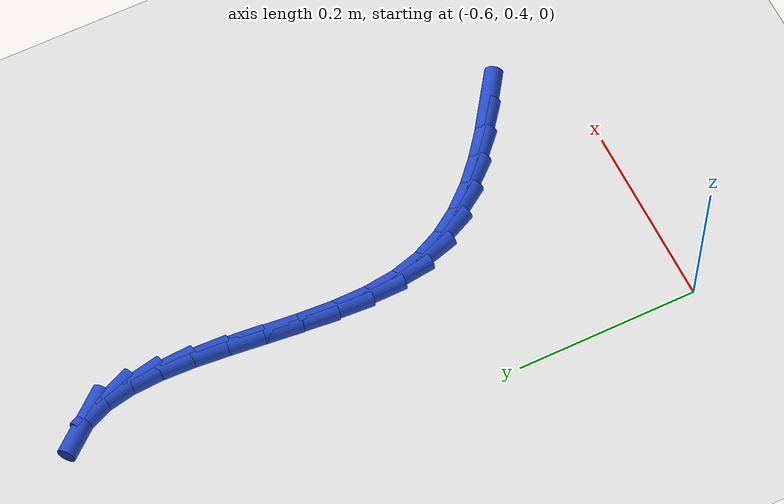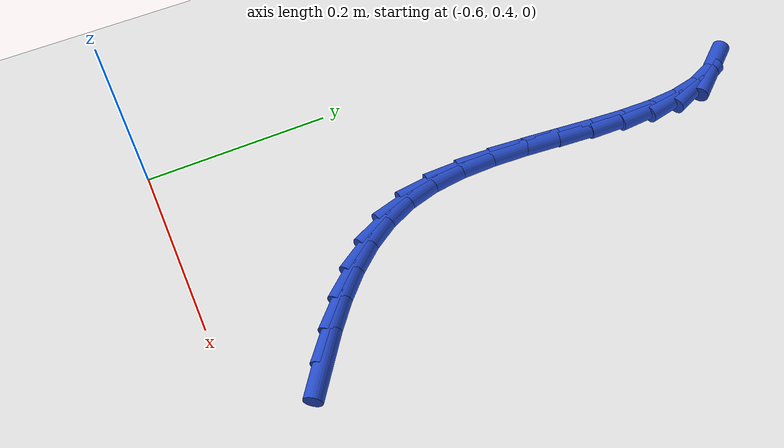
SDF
<sdf version="1.6">
 <world name="default">
  <model name="ground_plane">
   <static>1</static>
   <link name="link">
    <collision name="collision">
     <geometry><plane><normal>0 0 1</normal><size>100 100</size></plane></geometry>
     <surface><friction><ode><mu>100</mu><mu2>50</mu2></ode></friction></surface>
    </collision>
    <visual name="visual">
     <cast_shadows>0</cast_shadows>
     <geometry><plane><normal>0 0 1</normal><size>100 100</size></plane></geometry>
     <material>
      <script><uri>file://media/materials/scripts/gazebo.material</uri><name>Gazebo/WhiteGlow</name></script>
     </material>
    </visual>
   </link>
  </model>
  <model name="line">
   <link name="link_18">
    <pose>-0.3131551735052034 0.48954671347567114 0.01 0 1.57 -0.6079359270252546</pose>
    <collision name="collision">
     <geometry><cylinder><radius>0.01</radius><length>0.08</length></cylinder></geometry>
    </collision>
    <visual name="visual">
     <material>
      <script><name>Gazebo/Blue</name><uri>file://media/materials/scripts/gazebo.material</uri></script>
     </material>
     <geometry><cylinder><radius>0.01</radius><length>0.08</length></cylinder></geometry>
    </visual>
   </link>
   <link name="link_19">
    <pose>-0.34273277641818695 0.5101283161706972 0.01 0 1.57 -0.6662746001012232</pose>
    <collision name="collision">
     <geometry><cylinder><radius>0.01</radius><length>0.08</length></cylinder></geometry>
    </collision>
    <visual name="visual">
     <material>
      <script><name>Gazebo/Blue</name><uri>file://media/materials/scripts/gazebo.material</uri></script>
     </material>
     <geometry><cylinder><radius>0.01</radius><length>0.08</length></cylinder></geometry>
    </visual>
   </link>
   <link name="link_20">
    <pose>-0.37032562842982986 0.5318220449384388 0.01 0 1.57 -0.7460411265431658</pose>
    <collision name="collision">
     <geometry><cylinder><radius>0.01</radius><length>0.08</length></cylinder></geometry>
    </collision>
    <visual name="visual">
     <material>
      <script><name>Gazebo/Blue</name><uri>file://media/materials/scripts/gazebo.material</uri></script>
     </material>
     <geometry><cylinder><radius>0.01</radius><length>0.08</length></cylinder></geometry>
    </visual>
   </link>
   <link name="link_21">
    <pose>-0.39535562774692473 0.5549554942929857 0.01 0 1.57 -0.8496764899215774</pose>
    <collision name="collision">
     <geometry><cylinder><radius>0.01</radius><length>0.08</length></cylinder></geometry>
    </collision>
    <visual name="visual">
     <material>
      <script><name>Gazebo/Blue</name><uri>file://media/materials/scripts/gazebo.material</uri></script>
     </material>
     <geometry><cylinder><radius>0.01</radius><length>0.08</length></cylinder></geometry>
    </visual>
   </link>
   <link name="link_22">
    <pose>-0.41724467257626396 0.5798562587484275 0.01 0 1.57 -0.978373477867756</pose>
    <collision name="collision">
     <geometry><cylinder><radius>0.01</radius><length>0.08</length></cylinder></geometry>
    </collision>
    <visual name="visual">
     <material>
      <script><name>Gazebo/Blue</name><uri>file://media/materials/scripts/gazebo.material</uri></script>
     </material>
     <geometry><cylinder><radius>0.01</radius><length>0.08</length></cylinder></geometry>
    </visual>
   </link>
   <link name="link_23">
    <pose>-0.4354146611246403 0.6068519328188539 0.01 0 1.57 -1.1301474944746117</pose>
    <collision name="collision">
     <geometry><cylinder><radius>0.01</radius><length>0.08</length></cylinder></geometry>
    </collision>
    <visual name="visual">
     <material>
      <script><name>Gazebo/Blue</name><uri>file://media/materials/scripts/gazebo.material</uri></script>
     </material>
     <geometry><cylinder><radius>0.01</radius><length>0.08</length></cylinder></geometry>
    </visual>
   </link>
   <link name="link_24">
    <pose>-0.44928749159884596 0.636270111018354 0.01 0 1.57 -1.2978316115861905</pose>
    <collision name="collision">
     <geometry><cylinder><radius>0.01</radius><length>0.08</length></cylinder></geometry>
    </collision>
    <visual name="visual">
     <material>
      <script><name>Gazebo/Blue</name><uri>file://media/materials/scripts/gazebo.material</uri></script>
     </material>
     <geometry><cylinder><radius>0.01</radius><length>0.08</length></cylinder></geometry>
    </visual>
   </link>
   <link name="link_25">
    <pose>-0.45829190780061263 0.6684341893582361 0.01 0 1.57 -1.452235611223432</pose>
    <collision name="collision">
     <geometry><cylinder><radius>0.01</radius><length>0.08</length></cylinder></geometry>
    </collision>
    <visual name="visual">
     <material>
      <script><name>Gazebo/Blue</name><uri>file://media/materials/scripts/gazebo.material</uri></script>
     </material>
     <geometry><cylinder><radius>0.01</radius><length>0.08</length></cylinder></geometry>
    </visual>
   </link>
   <link name="link_26">
    <pose>-0.46244584084719786 0.7033062067135757 0.01 0 1.57 -1.5611669726235993</pose>
    <collision name="collision">
     <geometry><cylinder><radius>0.01</radius><length>0.08</length></cylinder></geometry>
    </collision>
    <visual name="visual">
     <material>
      <script><name>Gazebo/Blue</name><uri>file://media/materials/scripts/gazebo.material</uri></script>
     </material>
     <geometry><cylinder><radius>0.01</radius><length>0.08</length></cylinder></geometry>
    </visual>
   </link>
   <link name="link_27">
    <pose>-0.4628012502126478 0.7402140173530468 0.01 0 1.57 1.5110250331409731</pose>
    <collision name="collision">
     <geometry><cylinder><radius>0.01</radius><length>0.08</length></cylinder></geometry>
    </collision>
    <visual name="visual">
     <material>
      <script><name>Gazebo/Blue</name><uri>file://media/materials/scripts/gazebo.material</uri></script>
     </material>
     <geometry><cylinder><radius>0.01</radius><length>0.08</length></cylinder></geometry>
    </visual>
   </link>
   <link name="link_28">
    <pose>-0.4605148316582588 0.7784212392594733 0.01 0 1.57 1.4738219561894088</pose>
    <collision name="collision">
     <geometry><cylinder><radius>0.01</radius><length>0.08</length></cylinder></geometry>
    </collision>
    <visual name="visual">
     <material>
      <script><name>Gazebo/Blue</name><uri>file://media/materials/scripts/gazebo.material</uri></script>
     </material>
     <geometry><cylinder><radius>0.01</radius><length>0.08</length></cylinder></geometry>
    </visual>
   </link>
   <link name="link_29">
    <pose>-0.4567432809453266 0.8171914904156784 0.01 0 1.57 1.4649673731915769</pose>
    <collision name="collision">
     <geometry><cylinder><radius>0.01</radius><length>0.08</length></cylinder></geometry>
    </collision>
    <visual name="visual">
     <material>
      <script><name>Gazebo/Blue</name><uri>file://media/materials/scripts/gazebo.material</uri></script>
     </material>
     <geometry><cylinder><radius>0.01</radius><length>0.08</length></cylinder></geometry>
    </visual>
   </link>
   <link name="link_30">
    <pose>-0.4526432938351472 0.8557883888044853 0.01 0 1.57 1.4842006449011578</pose>
    <collision name="collision">
     <geometry><cylinder><radius>0.01</radius><length>0.08</length></cylinder></geometry>
    </collision>
    <visual name="visual">
     <material>
      <script><name>Gazebo/Blue</name><uri>file://media/materials/scripts/gazebo.material</uri></script>
     </material>
     <geometry><cylinder><radius>0.01</radius><length>0.08</length></cylinder></geometry>
    </visual>
   </link>
   <link name="link_31">
    <pose>-0.4493715660890166 0.8934755524087171 0.01 0 1.57 1.535108509654871</pose>
    <collision name="collision">
     <geometry><cylinder><radius>0.01</radius><length>0.08</length></cylinder></geometry>
    </collision>
    <visual name="visual">
     <material>
      <script><name>Gazebo/Blue</name><uri>file://media/materials/scripts/gazebo.material</uri></script>
     </material>
     <geometry><cylinder><radius>0.01</radius><length>0.08</length></cylinder></geometry>
    </visual>
   </link>
   <link name="link_32">
    <pose>-0.4480847934682311 0.9295165992111973 0.01 0 1.57 -1.5157433296709983</pose>
    <collision name="collision">
     <geometry><cylinder><radius>0.01</radius><length>0.08</length></cylinder></geometry>
    </collision>
    <visual name="visual">
     <material>
      <script><name>Gazebo/Blue</name><uri>file://media/materials/scripts/gazebo.material</uri></script>
     </material>
     <geometry><cylinder><radius>0.01</radius><length>0.08</length></cylinder></geometry>
    </visual>
   </link>
   <link name="link_33">
    <pose>-0.4499396717340862 0.9631751471947491 0.01 0 1.57 -1.3719751764933068</pose>
    <collision name="collision">
     <geometry><cylinder><radius>0.01</radius><length>0.08</length></cylinder></geometry>
    </collision>
    <visual name="visual">
     <material>
      <script><name>Gazebo/Blue</name><uri>file://media/materials/scripts/gazebo.material</uri></script>
     </material>
     <geometry><cylinder><radius>0.01</radius><length>0.08</length></cylinder></geometry>
    </visual>
   </link>
   <link name="link_34">
    <pose>-0.4560928966478782 0.9937148143421954 0.01 0 1.57 -1.1604687934787343</pose>
    <collision name="collision">
     <geometry><cylinder><radius>0.01</radius><length>0.08</length></cylinder></geometry>
    </collision>
    <visual name="visual">
     <material>
      <script><name>Gazebo/Blue</name><uri>file://media/materials/scripts/gazebo.material</uri></script>
     </material>
     <geometry><cylinder><radius>0.01</radius><length>0.08</length></cylinder></geometry>
    </visual>
   </link>
   <link name="link_35">
    <pose>-0.4677011639709031 1.02039921863636 0.01 0 1.57 -0.8812132171909178</pose>
    <collision name="collision">
     <geometry><cylinder><radius>0.01</radius><length>0.08</length></cylinder></geometry>
    </collision>
    <visual name="visual">
     <material>
      <script><name>Gazebo/Blue</name><uri>file://media/materials/scripts/gazebo.material</uri></script>
     </material>
     <geometry><cylinder><radius>0.01</radius><length>0.08</length></cylinder></geometry>
    </visual>
   </link>
  </model>
 </world>
</sdf>
